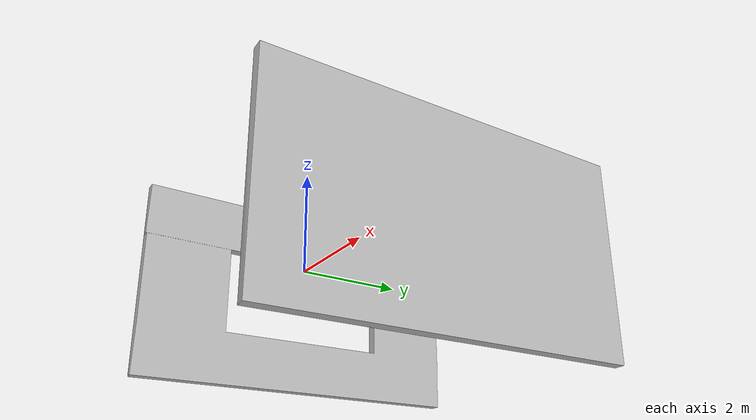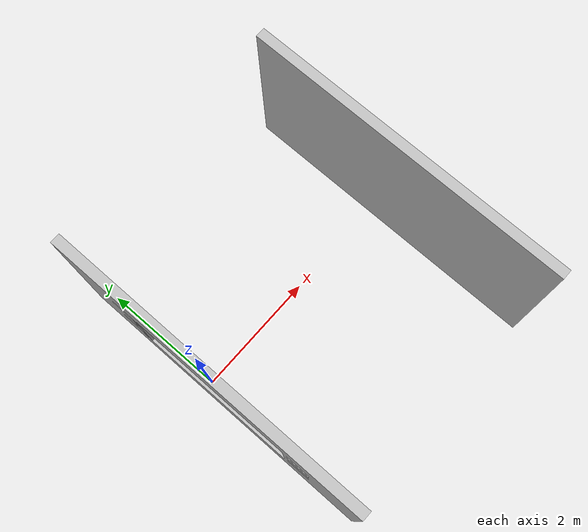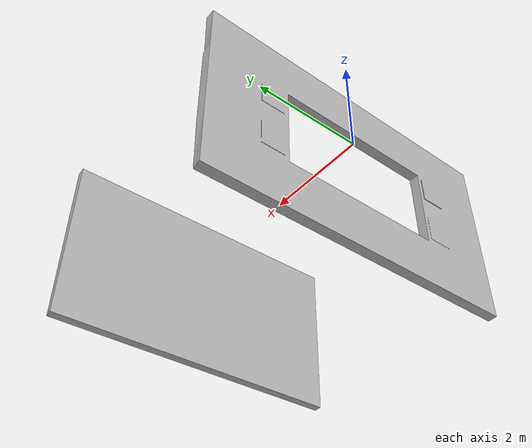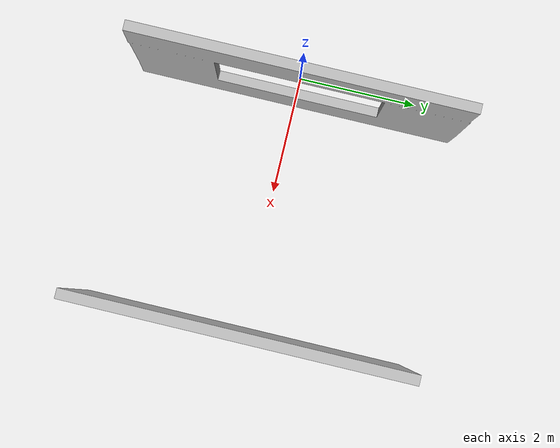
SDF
<?xml version="1.0" ?>
<sdf version="1.5">

 <model name='window_wall'>
      <pose>0 0 1 0 3.14159265 0</pose>
      <link name='link'>
        <inertial>
          <mass>1</mass>
          <inertia>
            <ixx>0.166667</ixx>
            <ixy>0</ixy>
            <ixz>0</ixz>
            <iyy>0.166667</iyy>
            <iyz>0</iyz>
            <izz>0.166667</izz>
          </inertia>
          <pose>0 0 0 0 -0 0</pose>
        </inertial>
        <collision name='collision'>
          <geometry>
            <mesh>
              <uri>model://window_wall/model.dae</uri>
              <scale>0.5 0.5 0.5</scale>
            </mesh>
          </geometry>
          <surface>
            <contact>
              <ode/>
            </contact>
            <bounce/>
            <friction>
              <torsional>
                <ode/>
              </torsional>
              <ode/>
            </friction>
          </surface>
          <max_contacts>10</max_contacts>
        </collision>
        <visual name='window_wall_mesh'>
          <geometry>
            <mesh>
                <uri>model://window_wall/model.dae</uri>
                <scale>0.5 0.5 0.5</scale>
            </mesh>
          </geometry>
        </visual>
        <self_collide>0</self_collide>
        <enable_wind>0</enable_wind>
        <kinematic>0</kinematic>
        <static>1</static>
      </link>
      <static>1</static>
    </model>
</sdf>
